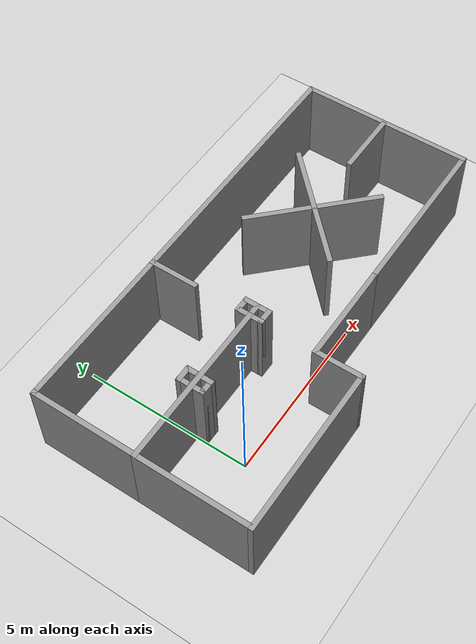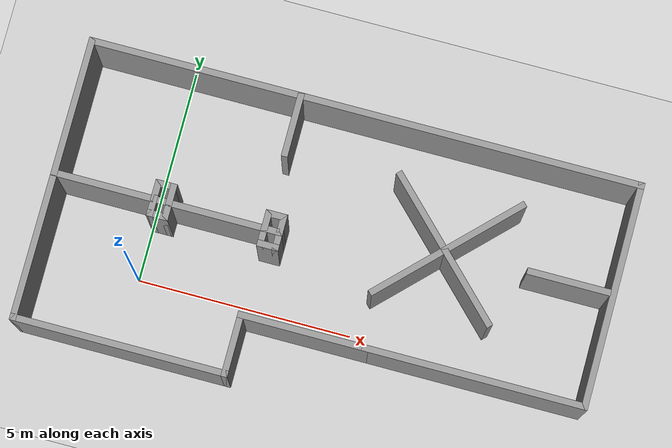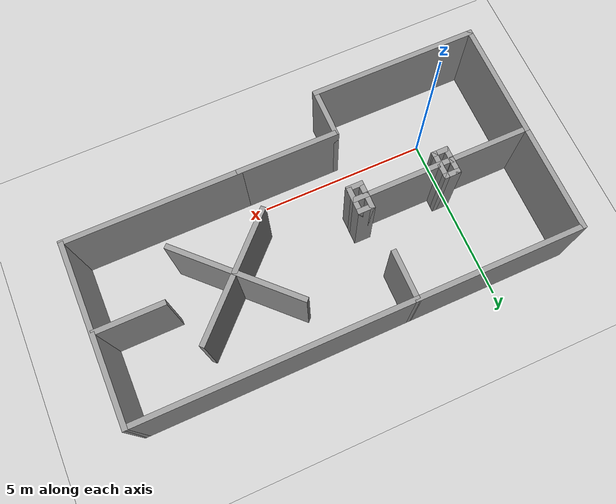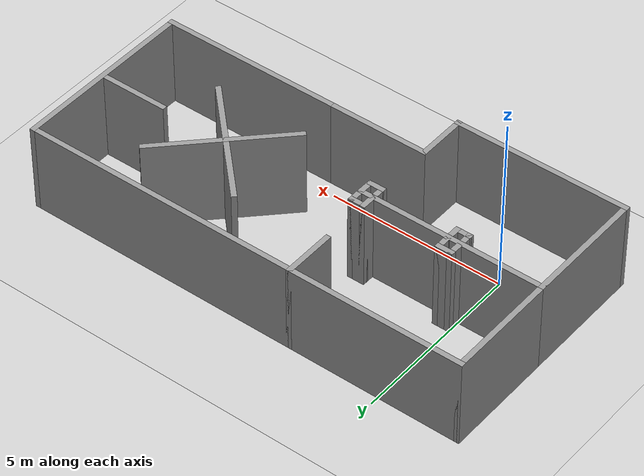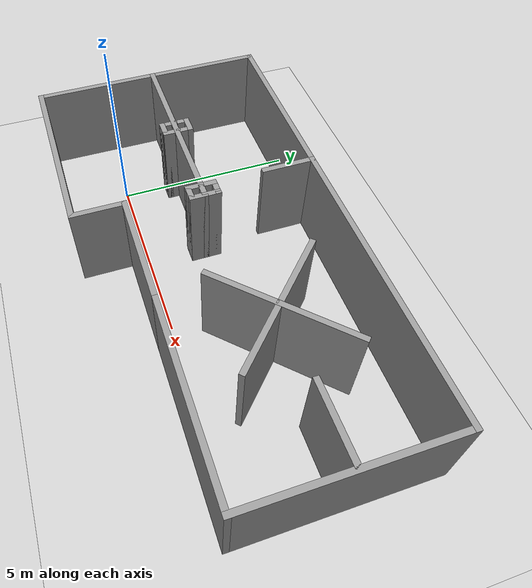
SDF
<sdf version="1.6">
 <world name="default">
  <light name="sun" type="directional">
   <pose>0 0 10 0 -0 0</pose>
   <diffuse>0.8 0.8 0.8 1</diffuse>
   <specular>0.2 0.2 0.2 1</specular>
   <attenuation>
    <range>1000</range>
    <constant>0.9</constant>
    <linear>0.01</linear>
    <quadratic>0.001</quadratic>
   </attenuation>
   <direction>-0.5 0.1 -0.9</direction>
  </light>
  <model name="ground_plane">
   <static>1</static>
   <link name="link">
    <collision name="collision">
     <geometry><plane><normal>0 0 1</normal><size>100 100</size></plane></geometry>
     <surface>
      <contact><collide_bitmask>65535</collide_bitmask></contact>
      <friction><ode><mu>100</mu><mu2>50</mu2></ode></friction>
     </surface>
    </collision>
    <visual name="visual">
     <cast_shadows>0</cast_shadows>
     <geometry><plane><normal>0 0 1</normal><size>100 100</size></plane></geometry>
     <material>
      <script><uri>file://media/materials/scripts/gazebo.material</uri><name>Gazebo/Grey</name></script>
     </material>
    </visual>
   </link>
  </model>
  <gravity>0 0 -9.8</gravity>
  <magnetic_field>6e-06 2.3e-05 -4.2e-05</magnetic_field>
  <atmosphere type="adiabatic"/>
  <physics name="default_physics" default="0" type="ode">
   <max_step_size>0.001</max_step_size>
   <real_time_factor>1</real_time_factor>
   <real_time_update_rate>1000</real_time_update_rate>
  </physics>
  <scene><ambient>0.4 0.4 0.4 1</ambient><background>0.7 0.7 0.7 1</background><shadows>1</shadows></scene>
  <spherical_coordinates>
   <surface_model>EARTH_WGS84</surface_model>
   <latitude_deg>0</latitude_deg>
   <longitude_deg>0</longitude_deg>
   <elevation>0</elevation>
   <heading_deg>0</heading_deg>
  </spherical_coordinates>
  <model name="smallRoom.sdf">
   <pose>4.1075 1.46862 0 0 -0 0</pose>
   <link name="Wall_10">
    <collision name="Wall_10_Collision">
     <geometry><box><size>1.5 0.15 2.5</size></box></geometry>
     <pose>0 0 1.25 0 -0 0</pose>
    </collision>
    <visual name="Wall_10_Visual">
     <pose>0 0 1.25 0 -0 0</pose>
     <geometry><box><size>1.5 0.15 2.5</size></box></geometry>
     <material>
      <script><uri>file://media/materials/scripts/gazebo.material</uri><name>Gazebo/Grey</name></script>
      <ambient>1 1 1 1</ambient>
     </material>
     <meta><layer>0</layer></meta>
    </visual>
    <pose>-1.5 -2.55 0 0 -0 1.5708</pose>
   </link>
   <link name="Wall_11">
    <collision name="Wall_11_Collision">
     <geometry><box><size>3 0.15 2.5</size></box></geometry>
     <pose>0 0 1.25 0 -0 0</pose>
    </collision>
    <visual name="Wall_11_Visual">
     <pose>0 0 1.25 0 -0 0</pose>
     <geometry><box><size>3 0.15 2.5</size></box></geometry>
     <material>
      <script><uri>file://media/materials/scripts/gazebo.material</uri><name>Gazebo/Grey</name></script>
      <ambient>1 1 1 1</ambient>
     </material>
     <meta><layer>0</layer></meta>
    </visual>
    <pose>-0.075 -1.875 0 0 -0 0</pose>
   </link>
   <link name="Wall_17">
    <collision name="Wall_17_Collision">
     <geometry><box><size>0.5 0.15 2.5</size></box></geometry>
     <pose>0 0 1.25 0 -0 0</pose>
    </collision>
    <visual name="Wall_17_Visual">
     <pose>0 0 1.25 0 -0 0</pose>
     <geometry><box><size>0.5 0.15 2.5</size></box></geometry>
     <material>
      <script><uri>file://media/materials/scripts/gazebo.material</uri><name>Gazebo/Grey</name></script>
      <ambient>1 1 1 1</ambient>
     </material>
     <meta><layer>0</layer></meta>
    </visual>
    <pose>-1.5 -0.05 0 0 -0 -1.5708</pose>
   </link>
   <link name="Wall_19">
    <collision name="Wall_19_Collision">
     <geometry><box><size>0.5 0.15 2.5</size></box></geometry>
     <pose>0 0 1.25 0 -0 0</pose>
    </collision>
    <visual name="Wall_19_Visual">
     <pose>0 0 1.25 0 -0 0</pose>
     <geometry><box><size>0.5 0.15 2.5</size></box></geometry>
     <material>
      <script><uri>file://media/materials/scripts/gazebo.material</uri><name>Gazebo/Grey</name></script>
      <ambient>1 1 1 1</ambient>
     </material>
     <meta><layer>0</layer></meta>
    </visual>
    <pose>-1.5 0.3 0 0 -0 1.5708</pose>
   </link>
   <link name="Wall_21">
    <collision name="Wall_21_Collision">
     <geometry><box><size>0.5 0.15 2.5</size></box></geometry>
     <pose>0 0 1.25 0 -0 0</pose>
    </collision>
    <visual name="Wall_21_Visual">
     <pose>0 0 1.25 0 -0 0</pose>
     <geometry><box><size>0.5 0.15 2.5</size></box></geometry>
     <material>
      <script><uri>file://media/materials/scripts/gazebo.material</uri><name>Gazebo/Grey</name></script>
      <ambient>1 1 1 1</ambient>
     </material>
     <meta><layer>0</layer></meta>
    </visual>
    <pose>-1.325 0.125 0 0 -0 0</pose>
   </link>
   <link name="Wall_23">
    <collision name="Wall_23_Collision">
     <geometry><box><size>0.5 0.15 2.5</size></box></geometry>
     <pose>0 0 1.25 0 -0 0</pose>
    </collision>
    <visual name="Wall_23_Visual">
     <pose>0 0 1.25 0 -0 0</pose>
     <geometry><box><size>0.5 0.15 2.5</size></box></geometry>
     <material>
      <script><uri>file://media/materials/scripts/gazebo.material</uri><name>Gazebo/Grey</name></script>
      <ambient>1 1 1 1</ambient>
     </material>
     <meta><layer>0</layer></meta>
    </visual>
    <pose>-1.325 0.475 0 0 -0 0</pose>
   </link>
   <link name="Wall_24">
    <collision name="Wall_24_Collision">
     <geometry><box><size>0.5 0.15 2.5</size></box></geometry>
     <pose>0 0 1.25 0 -0 0</pose>
    </collision>
    <visual name="Wall_24_Visual">
     <pose>0 0 1.25 0 -0 0</pose>
     <geometry><box><size>0.5 0.15 2.5</size></box></geometry>
     <material>
      <script><uri>file://media/materials/scripts/gazebo.material</uri><name>Gazebo/Grey</name></script>
      <ambient>1 1 1 1</ambient>
     </material>
     <meta><layer>0</layer></meta>
    </visual>
    <pose>-1.15 0.3 0 0 -0 -1.5708</pose>
   </link>
   <link name="Wall_29">
    <collision name="Wall_29_Collision">
     <geometry><box><size>0.5 0.15 2.5</size></box></geometry>
     <pose>0 0 1.25 0 -0 0</pose>
    </collision>
    <visual name="Wall_29_Visual">
     <pose>0 0 1.25 0 -0 0</pose>
     <geometry><box><size>0.5 0.15 2.5</size></box></geometry>
     <material>
      <script><uri>file://media/materials/scripts/gazebo.material</uri><name>Gazebo/Grey</name></script>
      <ambient>1 1 1 1</ambient>
     </material>
     <meta><layer>0</layer></meta>
    </visual>
    <pose>-1.325 -0.225 0 0 -0 0</pose>
   </link>
   <link name="Wall_30">
    <collision name="Wall_30_Collision">
     <geometry><box><size>0.5 0.15 2.5</size></box></geometry>
     <pose>0 0 1.25 0 -0 0</pose>
    </collision>
    <visual name="Wall_30_Visual">
     <pose>0 0 1.25 0 -0 0</pose>
     <geometry><box><size>0.5 0.15 2.5</size></box></geometry>
     <material>
      <script><uri>file://media/materials/scripts/gazebo.material</uri><name>Gazebo/Grey</name></script>
      <ambient>1 1 1 1</ambient>
     </material>
     <meta><layer>0</layer></meta>
    </visual>
    <pose>-1.15 -0.05 0 0 -0 1.5708</pose>
   </link>
   <link name="Wall_34">
    <collision name="Wall_34_Collision">
     <geometry><box><size>3.25 0.15 2.5</size></box></geometry>
     <pose>0 0 1.25 0 -0 0</pose>
    </collision>
    <visual name="Wall_34_Visual">
     <pose>0 0 1.25 0 -0 0</pose>
     <geometry><box><size>3.25 0.15 2.5</size></box></geometry>
     <material>
      <script><uri>file://media/materials/scripts/gazebo.material</uri><name>Gazebo/Grey</name></script>
      <ambient>1 1 1 1</ambient>
     </material>
     <meta><layer>0</layer></meta>
    </visual>
    <pose>-6.35 1.675 0 0 -0 1.5708</pose>
   </link>
   <link name="Wall_35">
    <collision name="Wall_35_Collision">
     <geometry><box><size>5 0.15 2.5</size></box></geometry>
     <pose>0 0 1.25 0 -0 0</pose>
    </collision>
    <visual name="Wall_35_Visual">
     <pose>0 0 1.25 0 -0 0</pose>
     <geometry><box><size>5 0.15 2.5</size></box></geometry>
     <material>
      <script><uri>file://media/materials/scripts/gazebo.material</uri><name>Gazebo/Grey</name></script>
      <ambient>1 1 1 1</ambient>
     </material>
     <meta><layer>0</layer></meta>
    </visual>
    <pose>-3.925 3.225 0 0 -0 0</pose>
   </link>
   <link name="Wall_37">
    <collision name="Wall_37_Collision">
     <geometry><box><size>0.5 0.15 2.5</size></box></geometry>
     <pose>0 0 1.25 0 -0 0</pose>
    </collision>
    <visual name="Wall_37_Visual">
     <pose>0 0 1.25 0 -0 0</pose>
     <geometry><box><size>0.5 0.15 2.5</size></box></geometry>
     <material>
      <script><uri>file://media/materials/scripts/gazebo.material</uri><name>Gazebo/Grey</name></script>
      <ambient>1 1 1 1</ambient>
     </material>
     <meta><layer>0</layer></meta>
    </visual>
    <pose>-3.69794 0.322422 0 0 -0 1.5708</pose>
   </link>
   <link name="Wall_38">
    <collision name="Wall_38_Collision">
     <geometry><box><size>0.5 0.15 2.5</size></box></geometry>
     <pose>0 0 1.25 0 -0 0</pose>
    </collision>
    <visual name="Wall_38_Visual">
     <pose>0 0 1.25 0 -0 0</pose>
     <geometry><box><size>0.5 0.15 2.5</size></box></geometry>
     <material>
      <script><uri>file://media/materials/scripts/gazebo.material</uri><name>Gazebo/Grey</name></script>
      <ambient>1 1 1 1</ambient>
     </material>
     <meta><layer>0</layer></meta>
    </visual>
    <pose>-3.87294 0.497422 0 0 -0 3.14159</pose>
   </link>
   <link name="Wall_43">
    <collision name="Wall_43_Collision">
     <geometry><box><size>0.5 0.15 2.5</size></box></geometry>
     <pose>0 0 1.25 0 -0 0</pose>
    </collision>
    <visual name="Wall_43_Visual">
     <pose>0 0 1.25 0 -0 0</pose>
     <geometry><box><size>0.5 0.15 2.5</size></box></geometry>
     <material>
      <script><uri>file://media/materials/scripts/gazebo.material</uri><name>Gazebo/Grey</name></script>
      <ambient>1 1 1 1</ambient>
     </material>
     <meta><layer>0</layer></meta>
    </visual>
    <pose>-4.04794 0.322422 0 0 -0 -1.5708</pose>
   </link>
   <link name="Wall_44">
    <collision name="Wall_44_Collision">
     <geometry><box><size>0.5 0.15 2.5</size></box></geometry>
     <pose>0 0 1.25 0 -0 0</pose>
    </collision>
    <visual name="Wall_44_Visual">
     <pose>0 0 1.25 0 -0 0</pose>
     <geometry><box><size>0.5 0.15 2.5</size></box></geometry>
     <material>
      <script><uri>file://media/materials/scripts/gazebo.material</uri><name>Gazebo/Grey</name></script>
      <ambient>1 1 1 1</ambient>
     </material>
     <meta><layer>0</layer></meta>
    </visual>
    <pose>-4.04794 -0.027578 0 0 -0 -1.5708</pose>
   </link>
   <link name="Wall_45">
    <collision name="Wall_45_Collision">
     <geometry><box><size>0.5 0.15 2.5</size></box></geometry>
     <pose>0 0 1.25 0 -0 0</pose>
    </collision>
    <visual name="Wall_45_Visual">
     <pose>0 0 1.25 0 -0 0</pose>
     <geometry><box><size>0.5 0.15 2.5</size></box></geometry>
     <material>
      <script><uri>file://media/materials/scripts/gazebo.material</uri><name>Gazebo/Grey</name></script>
      <ambient>1 1 1 1</ambient>
     </material>
     <meta><layer>0</layer></meta>
    </visual>
    <pose>-3.87294 -0.202578 0 0 -0 0</pose>
   </link>
   <link name="Wall_46">
    <collision name="Wall_46_Collision">
     <geometry><box><size>0.5 0.15 2.5</size></box></geometry>
     <pose>0 0 1.25 0 -0 0</pose>
    </collision>
    <visual name="Wall_46_Visual">
     <pose>0 0 1.25 0 -0 0</pose>
     <geometry><box><size>0.5 0.15 2.5</size></box></geometry>
     <material>
      <script><uri>file://media/materials/scripts/gazebo.material</uri><name>Gazebo/Grey</name></script>
      <ambient>1 1 1 1</ambient>
     </material>
     <meta><layer>0</layer></meta>
    </visual>
    <pose>-3.69794 -0.027578 0 0 -0 1.5708</pose>
   </link>
   <link name="Wall_48">
    <collision name="Wall_48_Collision">
     <geometry><box><size>1.5 0.15 2.5</size></box></geometry>
     <pose>0 0 1.25 0 -0 0</pose>
    </collision>
    <visual name="Wall_48_Visual">
     <pose>0 0 1.25 0 -0 0</pose>
     <geometry><box><size>1.5 0.15 2.5</size></box></geometry>
     <material>
      <script><uri>file://media/materials/scripts/gazebo.material</uri><name>Gazebo/Grey</name></script>
      <ambient>1 1 1 1</ambient>
     </material>
     <meta><layer>0</layer></meta>
    </visual>
    <pose>-1.5 2.55 0 0 -0 -1.5708</pose>
   </link>
   <link name="Wall_5">
    <collision name="Wall_5_Collision">
     <geometry><box><size>5 0.15 2.5</size></box></geometry>
     <pose>0 0 1.25 0 -0 0</pose>
    </collision>
    <visual name="Wall_5_Visual">
     <pose>0 0 1.25 0 -0 0</pose>
     <geometry><box><size>5 0.15 2.5</size></box></geometry>
     <material>
      <script><uri>file://media/materials/scripts/gazebo.material</uri><name>Gazebo/Grey</name></script>
      <ambient>1 1 1 1</ambient>
     </material>
     <meta><layer>0</layer></meta>
    </visual>
    <pose>-3.925 -3.225 0 0 -0 0</pose>
   </link>
   <link name="Wall_50">
    <collision name="Wall_50_Collision">
     <geometry><box><size>8 0.15 2.5</size></box></geometry>
     <pose>0 0 1.25 0 -0 0</pose>
    </collision>
    <visual name="Wall_50_Visual">
     <pose>0 0 1.25 0 -0 0</pose>
     <geometry><box><size>8 0.15 2.5</size></box></geometry>
     <material>
      <script><uri>file://media/materials/scripts/gazebo.material</uri><name>Gazebo/Grey</name></script>
      <ambient>1 1 1 1</ambient>
     </material>
     <meta><layer>0</layer></meta>
    </visual>
    <pose>2.425 3.225 0 0 -0 0</pose>
   </link>
   <link name="Wall_51">
    <collision name="Wall_51_Collision">
     <geometry><box><size>5.25 0.15 2.5</size></box></geometry>
     <pose>0 0 1.25 0 -0 0</pose>
    </collision>
    <visual name="Wall_51_Visual">
     <pose>0 0 1.25 0 -0 0</pose>
     <geometry><box><size>5.25 0.15 2.5</size></box></geometry>
     <material>
      <script><uri>file://media/materials/scripts/gazebo.material</uri><name>Gazebo/Grey</name></script>
      <ambient>1 1 1 1</ambient>
     </material>
     <meta><layer>0</layer></meta>
    </visual>
    <pose>6.35 0.675 0 0 -0 -1.5708</pose>
   </link>
   <link name="Wall_52">
    <collision name="Wall_52_Collision">
     <geometry><box><size>5.15 0.15 2.5</size></box></geometry>
     <pose>0 0 1.25 0 -0 0</pose>
    </collision>
    <visual name="Wall_52_Visual">
     <pose>0 0 1.25 0 -0 0</pose>
     <geometry><box><size>5.15 0.15 2.5</size></box></geometry>
     <material>
      <script><uri>file://media/materials/scripts/gazebo.material</uri><name>Gazebo/Grey</name></script>
      <ambient>1 1 1 1</ambient>
     </material>
     <meta><layer>0</layer></meta>
    </visual>
    <pose>3.85 -1.875 0 0 -0 3.14159</pose>
   </link>
   <link name="Wall_56">
    <collision name="Wall_56_Collision">
     <geometry><box><size>4 0.15 2.5</size></box></geometry>
     <pose>0 0 1.25 0 -0 0</pose>
    </collision>
    <visual name="Wall_56_Visual">
     <pose>0 0 1.25 0 -0 0</pose>
     <geometry><box><size>4 0.15 2.5</size></box></geometry>
     <material>
      <script><uri>file://media/materials/scripts/gazebo.material</uri><name>Gazebo/Grey</name></script>
      <ambient>1 1 1 1</ambient>
     </material>
     <meta><layer>0</layer></meta>
    </visual>
    <pose>2.4736 0.712702 0 0 -0 -0.785398</pose>
   </link>
   <link name="Wall_58">
    <collision name="Wall_58_Collision">
     <geometry><box><size>4 0.15 2.5</size></box></geometry>
     <pose>0 0 1.25 0 -0 0</pose>
    </collision>
    <visual name="Wall_58_Visual">
     <pose>0 0 1.25 0 -0 0</pose>
     <geometry><box><size>4 0.15 2.5</size></box></geometry>
     <material>
      <script><uri>file://media/materials/scripts/gazebo.material</uri><name>Gazebo/Grey</name></script>
      <ambient>1 1 1 1</ambient>
     </material>
     <meta><layer>0</layer></meta>
    </visual>
    <pose>2.54356 0.741594 0 0 -0 0.785398</pose>
   </link>
   <link name="Wall_61">
    <collision name="Wall_61_Collision">
     <geometry><box><size>2 0.15 2.5</size></box></geometry>
     <pose>0 0 1.25 0 -0 0</pose>
    </collision>
    <visual name="Wall_61_Visual">
     <pose>0 0 1.25 0 -0 0</pose>
     <geometry><box><size>2 0.15 2.5</size></box></geometry>
     <material>
      <script><uri>file://media/materials/scripts/gazebo.material</uri><name>Gazebo/Grey</name></script>
      <ambient>1 1 1 1</ambient>
     </material>
     <meta><layer>0</layer></meta>
    </visual>
    <pose>5.3718 0.717565 0 0 -0 3.14159</pose>
   </link>
   <link name="Wall_7">
    <collision name="Wall_7_Collision">
     <geometry><box><size>3.5 0.15 2.5</size></box></geometry>
     <pose>0 0 1.25 0 -0 0</pose>
    </collision>
    <visual name="Wall_7_Visual">
     <pose>0 0 1.25 0 -0 0</pose>
     <geometry><box><size>3.5 0.15 2.5</size></box></geometry>
     <material>
      <script><uri>file://media/materials/scripts/gazebo.material</uri><name>Gazebo/Grey</name></script>
      <ambient>1 1 1 1</ambient>
     </material>
     <meta><layer>0</layer></meta>
    </visual>
    <pose>-6.35 -1.55 0 0 -0 1.5708</pose>
   </link>
   <link name="Wall_8">
    <collision name="Wall_8_Collision">
     <geometry><box><size>5 0.15 2.5</size></box></geometry>
     <pose>0 0 1.25 0 -0 0</pose>
    </collision>
    <visual name="Wall_8_Visual">
     <pose>0 0 1.25 0 -0 0</pose>
     <geometry><box><size>5 0.15 2.5</size></box></geometry>
     <material>
      <script><uri>file://media/materials/scripts/gazebo.material</uri><name>Gazebo/Grey</name></script>
      <ambient>1 1 1 1</ambient>
     </material>
     <meta><layer>0</layer></meta>
    </visual>
    <pose>-3.925 0.125 0 0 -0 0</pose>
   </link>
   <static>1</static>
  </model>
 </world>
</sdf>
